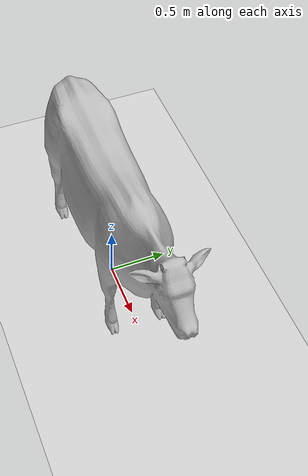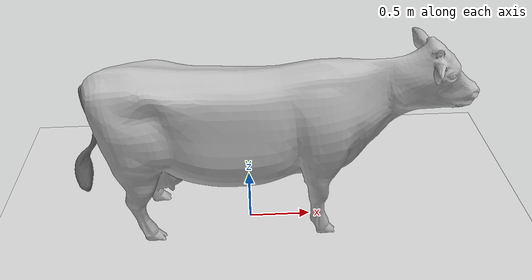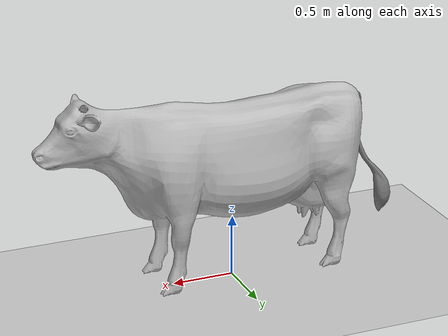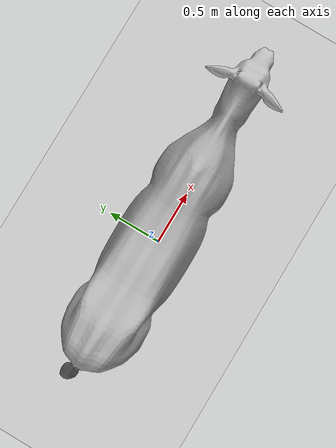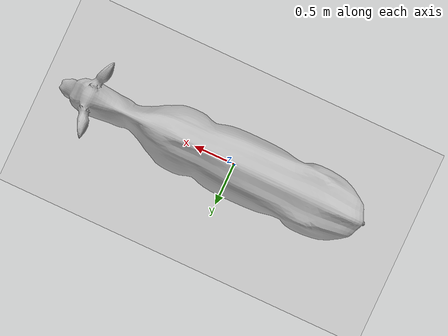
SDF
<?xml version="1.0"?>
<sdf version="1.4">
  <world name="default">

    <!-- Add a sun object -->
    <include>
      <uri>model://sun</uri>
    </include>

    <!-- Add a field-like ground plane -->
    <include>
      <uri>model://field_ground_plane</uri>
    </include>

    <!-- Add cow object at the origin -->
    <model name="cow">
      <pose>0 0 0  0 0 0</pose>
      <static>true</static>
      <link name="body">
        <visual name="visual">
          <geometry>
            <mesh>
              <uri>model://cow20.dae</uri>
            </mesh>
          </geometry>
        </visual>
      </link>
    </model>

    <!-- To add a sky with moving clouds -->
    <scene>
      <sky>
        <clouds>
          <speed>9</speed>
        </clouds>
      </sky>
    </scene>

  </world>
</sdf>

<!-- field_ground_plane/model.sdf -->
<sdf version="1.4">
   <model name="field_ground_plane">
      <static>true</static>
      <link name="link">
         <collision name="collision">
            <geometry>
               <plane>
                  <normal>0 0 1</normal>
                  <size>100 100</size>
               </plane>
            </geometry>
            <surface>
               <friction>
                  <ode>
                     <mu>100</mu>
                     <mu2>50</mu2>
                  </ode>
               </friction>
            </surface>
         </collision>
         <visual name="visual">
            <cast_shadows>false</cast_shadows>
            <geometry>
               <plane>
                  <normal>0 0 1</normal>
                  <size>100 100</size>
               </plane>
            </geometry>
            <material>
               <script>
                  <uri>model://field_ground_plane/materials/scripts</uri>
                  <uri>model://field_ground_plane/materials/textures</uri>
                  <name>FieldGroundPlane/Image</name>
               </script>
            </material>
         </visual>
      </link>
   </model>
</sdf>
